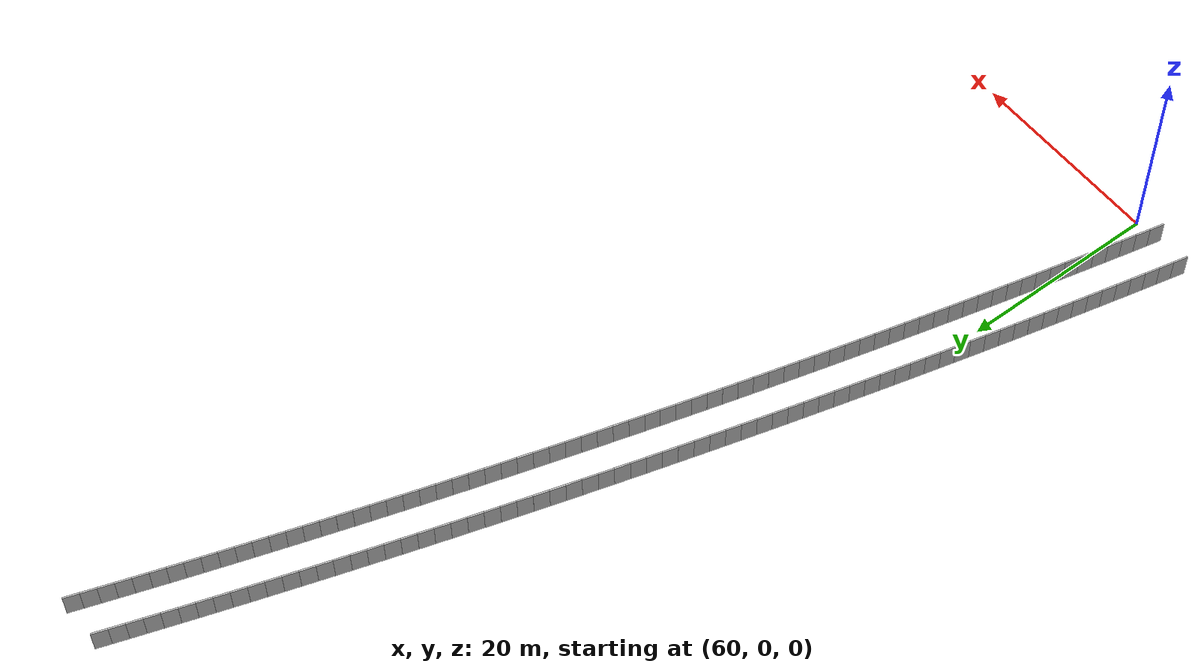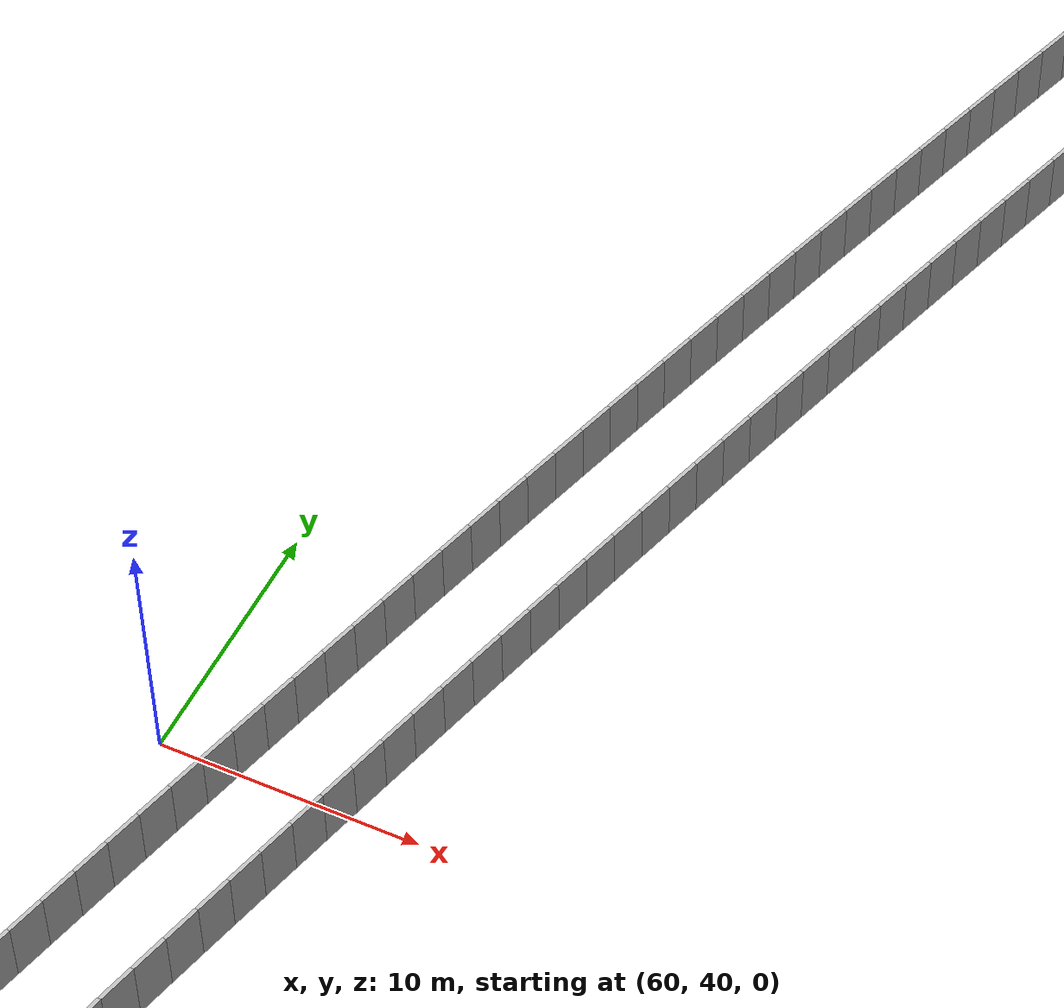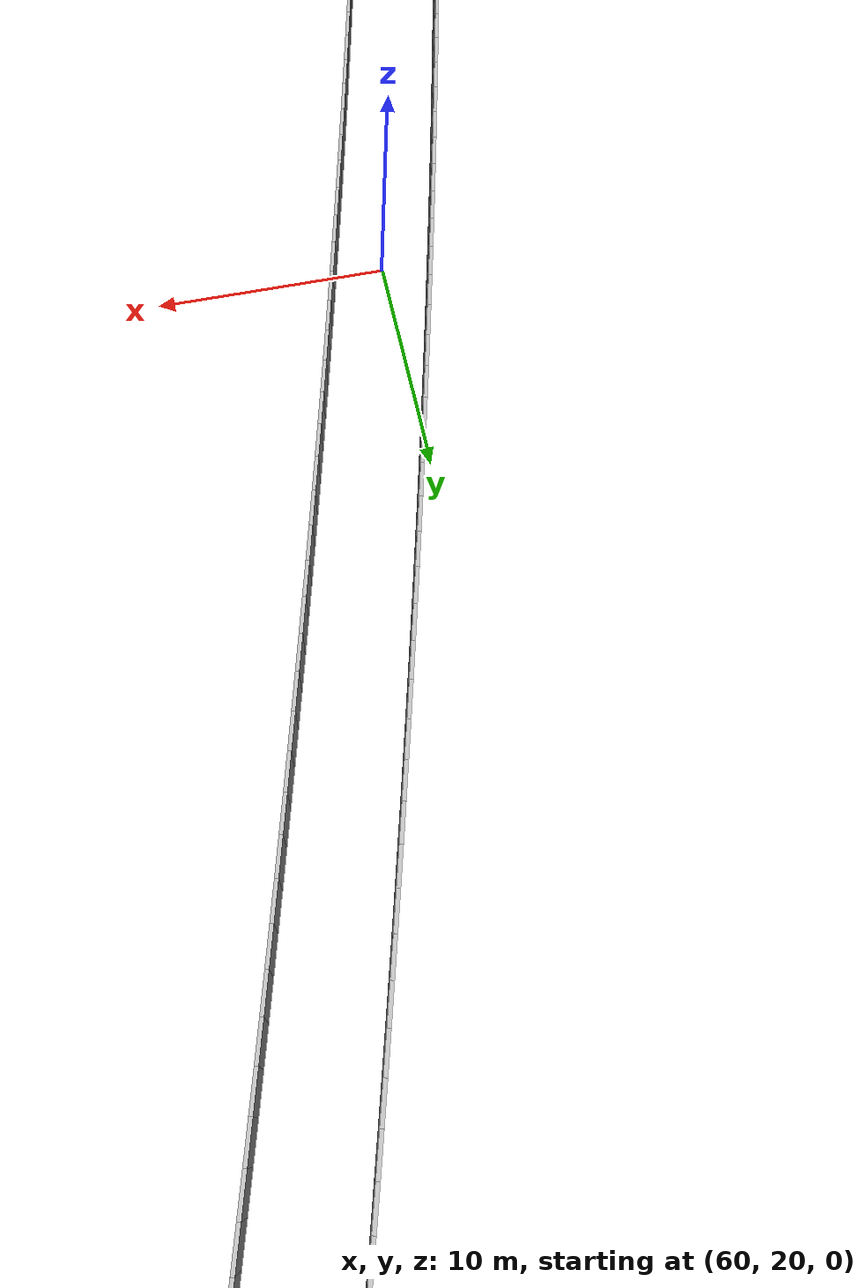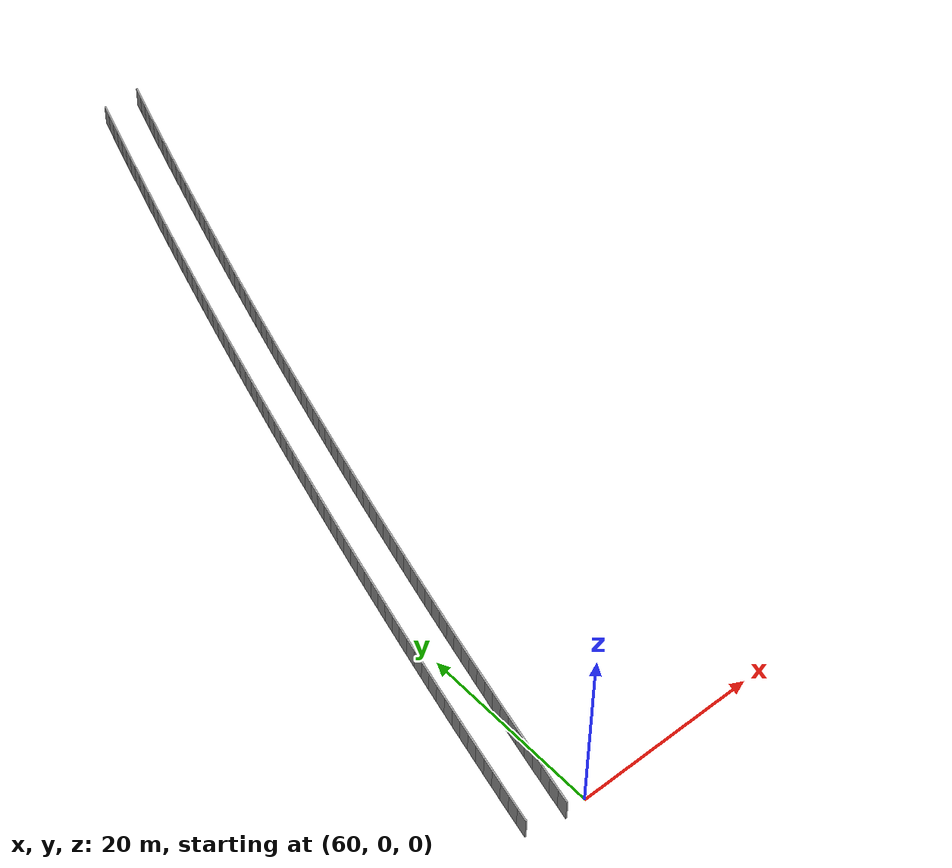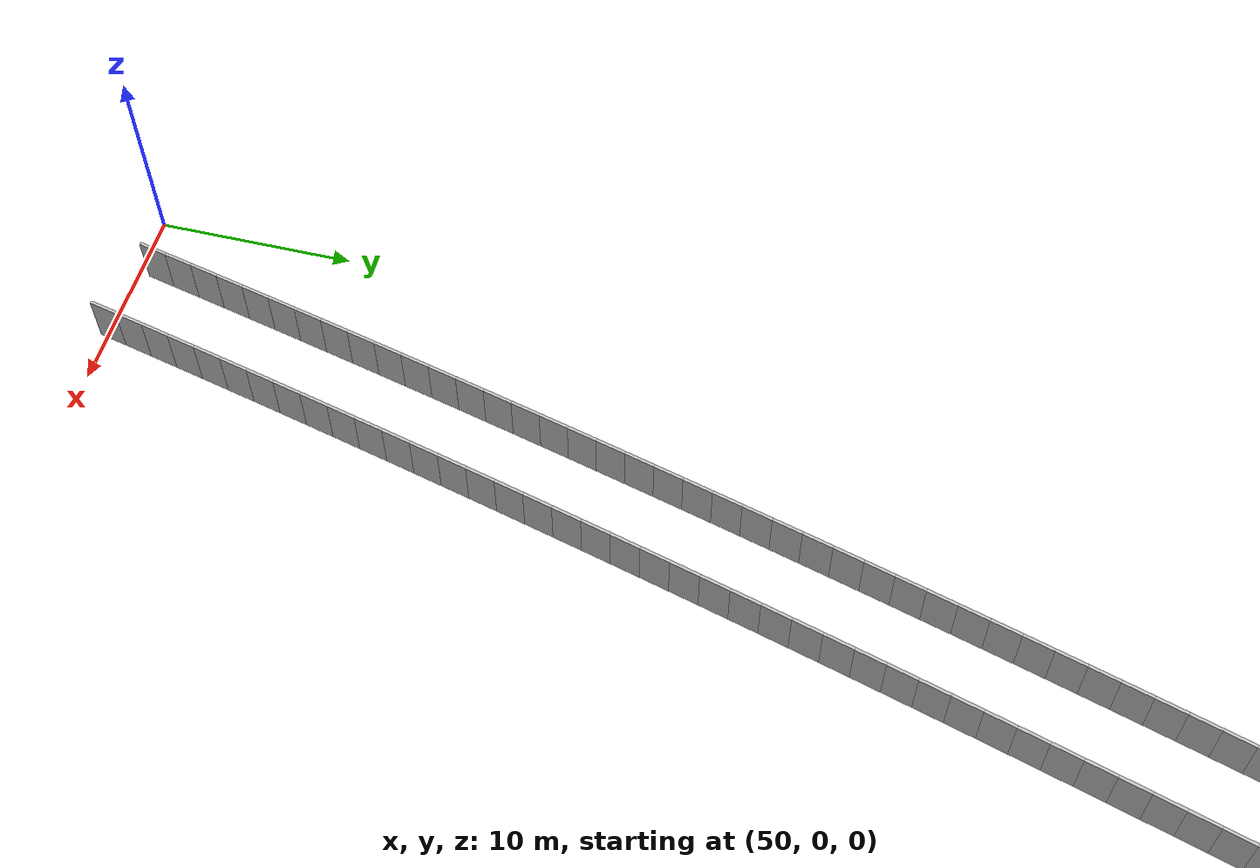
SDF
<sdf version="1.6">
 <model name="sps_0115">
  <static>1</static>
  <allow_auto_disable>0</allow_auto_disable>
  <link name="Wall5039">
   <collision name="collision"><geometry><box><size>1.49666 0.15 2.5</size></box></geometry></collision>
   <visual name="visual">
    <geometry><box><size>1.49666 0.15 2.5</size></box></geometry>
    <transparency>0.0</transparency>
   </visual>
   <pose>85.6731 99.6658 1.25 0 0 -1.90183</pose>
  </link>
  <link name="Wall5040">
   <collision name="collision"><geometry><box><size>1.49643 0.15 2.5</size></box></geometry></collision>
   <visual name="visual">
    <geometry><box><size>1.49643 0.15 2.5</size></box></geometry>
    <transparency>0.0</transparency>
   </visual>
   <pose>85.1879 98.2501 1.25 0 0 -1.90012</pose>
  </link>
  <link name="Wall5041">
   <collision name="collision"><geometry><box><size>1.49667 0.15 2.5</size></box></geometry></collision>
   <visual name="visual">
    <geometry><box><size>1.49667 0.15 2.5</size></box></geometry>
    <transparency>0.0</transparency>
   </visual>
   <pose>84.705 96.8336 1.25 0 0 -1.89856</pose>
  </link>
  <link name="Wall5042">
   <collision name="collision"><geometry><box><size>1.49654 0.15 2.5</size></box></geometry></collision>
   <visual name="visual">
    <geometry><box><size>1.49654 0.15 2.5</size></box></geometry>
    <transparency>0.0</transparency>
   </visual>
   <pose>84.2243 95.4163 1.25 0 0 -1.89704</pose>
  </link>
  <link name="Wall5043">
   <collision name="collision"><geometry><box><size>1.49636 0.15 2.5</size></box></geometry></collision>
   <visual name="visual">
    <geometry><box><size>1.49636 0.15 2.5</size></box></geometry>
    <transparency>0.0</transparency>
   </visual>
   <pose>83.7457 93.9984 1.25 0 0 -1.89553</pose>
  </link>
  <link name="Wall5044">
   <collision name="collision"><geometry><box><size>1.49662 0.15 2.5</size></box></geometry></collision>
   <visual name="visual">
    <geometry><box><size>1.49662 0.15 2.5</size></box></geometry>
    <transparency>0.0</transparency>
   </visual>
   <pose>83.2696 92.5797 1.25 0 0 -1.89375</pose>
  </link>
  <link name="Wall5045">
   <collision name="collision"><geometry><box><size>1.49647 0.15 2.5</size></box></geometry></collision>
   <visual name="visual">
    <geometry><box><size>1.49647 0.15 2.5</size></box></geometry>
    <transparency>0.0</transparency>
   </visual>
   <pose>82.7956 91.1602 1.25 0 0 -1.89228</pose>
  </link>
  <link name="Wall5046">
   <collision name="collision"><geometry><box><size>1.49651 0.15 2.5</size></box></geometry></collision>
   <visual name="visual">
    <geometry><box><size>1.49651 0.15 2.5</size></box></geometry>
    <transparency>0.0</transparency>
   </visual>
   <pose>82.3239 89.74 1.25 0 0 -1.89068</pose>
  </link>
  <link name="Wall5047">
   <collision name="collision"><geometry><box><size>1.49651 0.15 2.5</size></box></geometry></collision>
   <visual name="visual">
    <geometry><box><size>1.49651 0.15 2.5</size></box></geometry>
    <transparency>0.0</transparency>
   </visual>
   <pose>81.8545 88.319 1.25 0 0 -1.889</pose>
  </link>
  <link name="Wall5048">
   <collision name="collision"><geometry><box><size>1.49646 0.15 2.5</size></box></geometry></collision>
   <visual name="visual">
    <geometry><box><size>1.49646 0.15 2.5</size></box></geometry>
    <transparency>0.0</transparency>
   </visual>
   <pose>81.3874 86.8973 1.25 0 0 -1.88759</pose>
  </link>
  <link name="Wall5049">
   <collision name="collision"><geometry><box><size>1.49665 0.15 2.5</size></box></geometry></collision>
   <visual name="visual">
    <geometry><box><size>1.49665 0.15 2.5</size></box></geometry>
    <transparency>0.0</transparency>
   </visual>
   <pose>80.9224 85.4748 1.25 0 0 -1.88588</pose>
  </link>
  <link name="Wall5050">
   <collision name="collision"><geometry><box><size>1.49661 0.15 2.5</size></box></geometry></collision>
   <visual name="visual">
    <geometry><box><size>1.49661 0.15 2.5</size></box></geometry>
    <transparency>0.0</transparency>
   </visual>
   <pose>80.4596 84.0515 1.25 0 0 -1.88434</pose>
  </link>
  <link name="Wall5051">
   <collision name="collision"><geometry><box><size>1.49663 0.15 2.5</size></box></geometry></collision>
   <visual name="visual">
    <geometry><box><size>1.49663 0.15 2.5</size></box></geometry>
    <transparency>0.0</transparency>
   </visual>
   <pose>79.9991 82.6275 1.25 0 0 -1.8828</pose>
  </link>
  <link name="Wall5052">
   <collision name="collision"><geometry><box><size>1.4967 0.15 2.5</size></box></geometry></collision>
   <visual name="visual">
    <geometry><box><size>1.4967 0.15 2.5</size></box></geometry>
    <transparency>0.0</transparency>
   </visual>
   <pose>79.5409 81.2027 1.25 0 0 -1.88107</pose>
  </link>
  <link name="Wall5053">
   <collision name="collision"><geometry><box><size>1.4964 0.15 2.5</size></box></geometry></collision>
   <visual name="visual">
    <geometry><box><size>1.4964 0.15 2.5</size></box></geometry>
    <transparency>0.0</transparency>
   </visual>
   <pose>79.085 79.7773 1.25 0 0 -1.87964</pose>
  </link>
  <link name="Wall5054">
   <collision name="collision"><geometry><box><size>1.49659 0.15 2.5</size></box></geometry></collision>
   <visual name="visual">
    <geometry><box><size>1.49659 0.15 2.5</size></box></geometry>
    <transparency>0.0</transparency>
   </visual>
   <pose>78.6314 78.3512 1.25 0 0 -1.87788</pose>
  </link>
  <link name="Wall5055">
   <collision name="collision"><geometry><box><size>1.49656 0.15 2.5</size></box></geometry></collision>
   <visual name="visual">
    <geometry><box><size>1.49656 0.15 2.5</size></box></geometry>
    <transparency>0.0</transparency>
   </visual>
   <pose>78.18 76.9243 1.25 0 0 -1.87648</pose>
  </link>
  <link name="Wall5056">
   <collision name="collision"><geometry><box><size>1.49643 0.15 2.5</size></box></geometry></collision>
   <visual name="visual">
    <geometry><box><size>1.49643 0.15 2.5</size></box></geometry>
    <transparency>0.0</transparency>
   </visual>
   <pose>77.7309 75.4968 1.25 0 0 -1.87484</pose>
  </link>
  <link name="Wall5057">
   <collision name="collision"><geometry><box><size>1.49653 0.15 2.5</size></box></geometry></collision>
   <visual name="visual">
    <geometry><box><size>1.49653 0.15 2.5</size></box></geometry>
    <transparency>0.0</transparency>
   </visual>
   <pose>77.284 74.0686 1.25 0 0 -1.87328</pose>
  </link>
  <link name="Wall5058">
   <collision name="collision"><geometry><box><size>1.49646 0.15 2.5</size></box></geometry></collision>
   <visual name="visual">
    <geometry><box><size>1.49646 0.15 2.5</size></box></geometry>
    <transparency>0.0</transparency>
   </visual>
   <pose>76.8393 72.6397 1.25 0 0 -1.87163</pose>
  </link>
  <link name="Wall5059">
   <collision name="collision"><geometry><box><size>1.4965 0.15 2.5</size></box></geometry></collision>
   <visual name="visual">
    <geometry><box><size>1.4965 0.15 2.5</size></box></geometry>
    <transparency>0.0</transparency>
   </visual>
   <pose>76.3971 71.2101 1.25 0 0 -1.87004</pose>
  </link>
  <link name="Wall5060">
   <collision name="collision"><geometry><box><size>1.4964 0.15 2.5</size></box></geometry></collision>
   <visual name="visual">
    <geometry><box><size>1.4964 0.15 2.5</size></box></geometry>
    <transparency>0.0</transparency>
   </visual>
   <pose>75.9571 69.7798 1.25 0 0 -1.86844</pose>
  </link>
  <link name="Wall5061">
   <collision name="collision"><geometry><box><size>1.49655 0.15 2.5</size></box></geometry></collision>
   <visual name="visual">
    <geometry><box><size>1.49655 0.15 2.5</size></box></geometry>
    <transparency>0.0</transparency>
   </visual>
   <pose>75.5192 68.3488 1.25 0 0 -1.86696</pose>
  </link>
  <link name="Wall5062">
   <collision name="collision"><geometry><box><size>1.49662 0.15 2.5</size></box></geometry></collision>
   <visual name="visual">
    <geometry><box><size>1.49662 0.15 2.5</size></box></geometry>
    <transparency>0.0</transparency>
   </visual>
   <pose>75.0837 66.917 1.25 0 0 -1.86528</pose>
  </link>
  <link name="Wall5063">
   <collision name="collision"><geometry><box><size>1.49658 0.15 2.5</size></box></geometry></collision>
   <visual name="visual">
    <geometry><box><size>1.49658 0.15 2.5</size></box></geometry>
    <transparency>0.0</transparency>
   </visual>
   <pose>74.6504 65.4845 1.25 0 0 -1.8638</pose>
  </link>
  <link name="Wall5064">
   <collision name="collision"><geometry><box><size>1.49645 0.15 2.5</size></box></geometry></collision>
   <visual name="visual">
    <geometry><box><size>1.49645 0.15 2.5</size></box></geometry>
    <transparency>0.0</transparency>
   </visual>
   <pose>74.2194 64.0514 1.25 0 0 -1.86208</pose>
  </link>
  <link name="Wall5065">
   <collision name="collision"><geometry><box><size>1.49659 0.15 2.5</size></box></geometry></collision>
   <visual name="visual">
    <geometry><box><size>1.49659 0.15 2.5</size></box></geometry>
    <transparency>0.0</transparency>
   </visual>
   <pose>73.7907 62.6176 1.25 0 0 -1.86056</pose>
  </link>
  <link name="Wall5066">
   <collision name="collision"><geometry><box><size>1.49649 0.15 2.5</size></box></geometry></collision>
   <visual name="visual">
    <geometry><box><size>1.49649 0.15 2.5</size></box></geometry>
    <transparency>0.0</transparency>
   </visual>
   <pose>73.3642 61.1831 1.25 0 0 -1.85905</pose>
  </link>
  <link name="Wall5067">
   <collision name="collision"><geometry><box><size>1.49652 0.15 2.5</size></box></geometry></collision>
   <visual name="visual">
    <geometry><box><size>1.49652 0.15 2.5</size></box></geometry>
    <transparency>0.0</transparency>
   </visual>
   <pose>72.9398 59.748 1.25 0 0 -1.85751</pose>
  </link>
  <link name="Wall5068">
   <collision name="collision"><geometry><box><size>1.49654 0.15 2.5</size></box></geometry></collision>
   <visual name="visual">
    <geometry><box><size>1.49654 0.15 2.5</size></box></geometry>
    <transparency>0.0</transparency>
   </visual>
   <pose>72.5179 58.3122 1.25 0 0 -1.85568</pose>
  </link>
  <link name="Wall5069">
   <collision name="collision"><geometry><box><size>1.4965 0.15 2.5</size></box></geometry></collision>
   <visual name="visual">
    <geometry><box><size>1.4965 0.15 2.5</size></box></geometry>
    <transparency>0.0</transparency>
   </visual>
   <pose>72.0983 56.8757 1.25 0 0 -1.85428</pose>
  </link>
  <link name="Wall5070">
   <collision name="collision"><geometry><box><size>1.49648 0.15 2.5</size></box></geometry></collision>
   <visual name="visual">
    <geometry><box><size>1.49648 0.15 2.5</size></box></geometry>
    <transparency>0.0</transparency>
   </visual>
   <pose>71.681 55.4386 1.25 0 0 -1.85263</pose>
  </link>
  <link name="Wall5071">
   <collision name="collision"><geometry><box><size>1.4964 0.15 2.5</size></box></geometry></collision>
   <visual name="visual">
    <geometry><box><size>1.4964 0.15 2.5</size></box></geometry>
    <transparency>0.0</transparency>
   </visual>
   <pose>71.2659 54.0009 1.25 0 0 -1.85112</pose>
  </link>
  <link name="Wall5072">
   <collision name="collision"><geometry><box><size>1.4965 0.15 2.5</size></box></geometry></collision>
   <visual name="visual">
    <geometry><box><size>1.4965 0.15 2.5</size></box></geometry>
    <transparency>0.0</transparency>
   </visual>
   <pose>70.853 52.5625 1.25 0 0 -1.84944</pose>
  </link>
  <link name="Wall5073">
   <collision name="collision"><geometry><box><size>1.49665 0.15 2.5</size></box></geometry></collision>
   <visual name="visual">
    <geometry><box><size>1.49665 0.15 2.5</size></box></geometry>
    <transparency>0.0</transparency>
   </visual>
   <pose>70.4426 51.1233 1.25 0 0 -1.84785</pose>
  </link>
  <link name="Wall5074">
   <collision name="collision"><geometry><box><size>1.49648 0.15 2.5</size></box></geometry></collision>
   <visual name="visual">
    <geometry><box><size>1.49648 0.15 2.5</size></box></geometry>
    <transparency>0.0</transparency>
   </visual>
   <pose>70.0343 49.6835 1.25 0 0 -1.8464</pose>
  </link>
  <link name="Wall5075">
   <collision name="collision"><geometry><box><size>1.49658 0.15 2.5</size></box></geometry></collision>
   <visual name="visual">
    <geometry><box><size>1.49658 0.15 2.5</size></box></geometry>
    <transparency>0.0</transparency>
   </visual>
   <pose>69.6283 48.2431 1.25 0 0 -1.84468</pose>
  </link>
  <link name="Wall5076">
   <collision name="collision"><geometry><box><size>1.49657 0.15 2.5</size></box></geometry></collision>
   <visual name="visual">
    <geometry><box><size>1.49657 0.15 2.5</size></box></geometry>
    <transparency>0.0</transparency>
   </visual>
   <pose>69.2246 46.802 1.25 0 0 -1.84316</pose>
  </link>
  <link name="Wall5077">
   <collision name="collision"><geometry><box><size>1.49652 0.15 2.5</size></box></geometry></collision>
   <visual name="visual">
    <geometry><box><size>1.49652 0.15 2.5</size></box></geometry>
    <transparency>0.0</transparency>
   </visual>
   <pose>68.8232 45.3603 1.25 0 0 -1.84152</pose>
  </link>
  <link name="Wall5078">
   <collision name="collision"><geometry><box><size>1.49652 0.15 2.5</size></box></geometry></collision>
   <visual name="visual">
    <geometry><box><size>1.49652 0.15 2.5</size></box></geometry>
    <transparency>0.0</transparency>
   </visual>
   <pose>68.4241 43.918 1.25 0 0 -1.83999</pose>
  </link>
  <link name="Wall5079">
   <collision name="collision"><geometry><box><size>1.49642 0.15 2.5</size></box></geometry></collision>
   <visual name="visual">
    <geometry><box><size>1.49642 0.15 2.5</size></box></geometry>
    <transparency>0.0</transparency>
   </visual>
   <pose>68.0272 42.4751 1.25 0 0 -1.83836</pose>
  </link>
  <link name="Wall5080">
   <collision name="collision"><geometry><box><size>1.49665 0.15 2.5</size></box></geometry></collision>
   <visual name="visual">
    <geometry><box><size>1.49665 0.15 2.5</size></box></geometry>
    <transparency>0.0</transparency>
   </visual>
   <pose>67.6327 41.0315 1.25 0 0 -1.83676</pose>
  </link>
  <link name="Wall5081">
   <collision name="collision"><geometry><box><size>1.49643 0.15 2.5</size></box></geometry></collision>
   <visual name="visual">
    <geometry><box><size>1.49643 0.15 2.5</size></box></geometry>
    <transparency>0.0</transparency>
   </visual>
   <pose>67.2405 39.5873 1.25 0 0 -1.83527</pose>
  </link>
  <link name="Wall5082">
   <collision name="collision"><geometry><box><size>1.49635 0.15 2.5</size></box></geometry></collision>
   <visual name="visual">
    <geometry><box><size>1.49635 0.15 2.5</size></box></geometry>
    <transparency>0.0</transparency>
   </visual>
   <pose>66.8505 38.1426 1.25 0 0 -1.83368</pose>
  </link>
  <link name="Wall5083">
   <collision name="collision"><geometry><box><size>1.4966 0.15 2.5</size></box></geometry></collision>
   <visual name="visual">
    <geometry><box><size>1.4966 0.15 2.5</size></box></geometry>
    <transparency>0.0</transparency>
   </visual>
   <pose>66.4627 36.6972 1.25 0 0 -1.83208</pose>
  </link>
  <link name="Wall5084">
   <collision name="collision"><geometry><box><size>1.49656 0.15 2.5</size></box></geometry></collision>
   <visual name="visual">
    <geometry><box><size>1.49656 0.15 2.5</size></box></geometry>
    <transparency>0.0</transparency>
   </visual>
   <pose>66.0774 35.2511 1.25 0 0 -1.8304</pose>
  </link>
  <link name="Wall5085">
   <collision name="collision"><geometry><box><size>1.49642 0.15 2.5</size></box></geometry></collision>
   <visual name="visual">
    <geometry><box><size>1.49642 0.15 2.5</size></box></geometry>
    <transparency>0.0</transparency>
   </visual>
   <pose>65.6943 33.8045 1.25 0 0 -1.82894</pose>
  </link>
  <link name="Wall5086">
   <collision name="collision"><geometry><box><size>1.49669 0.15 2.5</size></box></geometry></collision>
   <visual name="visual">
    <geometry><box><size>1.49669 0.15 2.5</size></box></geometry>
    <transparency>0.0</transparency>
   </visual>
   <pose>65.3135 32.3572 1.25 0 0 -1.82721</pose>
  </link>
  <link name="Wall5087">
   <collision name="collision"><geometry><box><size>1.49638 0.15 2.5</size></box></geometry></collision>
   <visual name="visual">
    <geometry><box><size>1.49638 0.15 2.5</size></box></geometry>
    <transparency>0.0</transparency>
   </visual>
   <pose>64.935 30.9093 1.25 0 0 -1.82579</pose>
  </link>
  <link name="Wall5088">
   <collision name="collision"><geometry><box><size>1.4966 0.15 2.5</size></box></geometry></collision>
   <visual name="visual">
    <geometry><box><size>1.4966 0.15 2.5</size></box></geometry>
    <transparency>0.0</transparency>
   </visual>
   <pose>64.5587 29.4609 1.25 0 0 -1.82406</pose>
  </link>
  <link name="Wall5089">
   <collision name="collision"><geometry><box><size>1.49658 0.15 2.5</size></box></geometry></collision>
   <visual name="visual">
    <geometry><box><size>1.49658 0.15 2.5</size></box></geometry>
    <transparency>0.0</transparency>
   </visual>
   <pose>64.1848 28.0118 1.25 0 0 -1.82255</pose>
  </link>
  <link name="Wall5090">
   <collision name="collision"><geometry><box><size>1.49639 0.15 2.5</size></box></geometry></collision>
   <visual name="visual">
    <geometry><box><size>1.49639 0.15 2.5</size></box></geometry>
    <transparency>0.0</transparency>
   </visual>
   <pose>63.8131 26.5622 1.25 0 0 -1.82107</pose>
  </link>
  <link name="Wall5091">
   <collision name="collision"><geometry><box><size>1.49657 0.15 2.5</size></box></geometry></collision>
   <visual name="visual">
    <geometry><box><size>1.49657 0.15 2.5</size></box></geometry>
    <transparency>0.0</transparency>
   </visual>
   <pose>63.4438 25.112 1.25 0 0 -1.81923</pose>
  </link>
  <link name="Wall5092">
   <collision name="collision"><geometry><box><size>1.49643 0.15 2.5</size></box></geometry></collision>
   <visual name="visual">
    <geometry><box><size>1.49643 0.15 2.5</size></box></geometry>
    <transparency>0.0</transparency>
   </visual>
   <pose>63.0769 23.6612 1.25 0 0 -1.81786</pose>
  </link>
  <link name="Wall5093">
   <collision name="collision"><geometry><box><size>1.49663 0.15 2.5</size></box></geometry></collision>
   <visual name="visual">
    <geometry><box><size>1.49663 0.15 2.5</size></box></geometry>
    <transparency>0.0</transparency>
   </visual>
   <pose>62.7121 22.2098 1.25 0 0 -1.81623</pose>
  </link>
  <link name="Wall5094">
   <collision name="collision"><geometry><box><size>1.49663 0.15 2.5</size></box></geometry></collision>
   <visual name="visual">
    <geometry><box><size>1.49663 0.15 2.5</size></box></geometry>
    <transparency>0.0</transparency>
   </visual>
   <pose>62.3496 20.7577 1.25 0 0 -1.81455</pose>
  </link>
  <link name="Wall5095">
   <collision name="collision"><geometry><box><size>1.49651 0.15 2.5</size></box></geometry></collision>
   <visual name="visual">
    <geometry><box><size>1.49651 0.15 2.5</size></box></geometry>
    <transparency>0.0</transparency>
   </visual>
   <pose>61.9896 19.3051 1.25 0 0 -1.81302</pose>
  </link>
  <link name="Wall5096">
   <collision name="collision"><geometry><box><size>1.49648 0.15 2.5</size></box></geometry></collision>
   <visual name="visual">
    <geometry><box><size>1.49648 0.15 2.5</size></box></geometry>
    <transparency>0.0</transparency>
   </visual>
   <pose>61.6318 17.852 1.25 0 0 -1.81142</pose>
  </link>
  <link name="Wall5097">
   <collision name="collision"><geometry><box><size>1.4966 0.15 2.5</size></box></geometry></collision>
   <visual name="visual">
    <geometry><box><size>1.4966 0.15 2.5</size></box></geometry>
    <transparency>0.0</transparency>
   </visual>
   <pose>61.2763 16.3983 1.25 0 0 -1.80985</pose>
  </link>
  <link name="Wall5098">
   <collision name="collision"><geometry><box><size>1.49641 0.15 2.5</size></box></geometry></collision>
   <visual name="visual">
    <geometry><box><size>1.49641 0.15 2.5</size></box></geometry>
    <transparency>0.0</transparency>
   </visual>
   <pose>60.9231 14.9441 1.25 0 0 -1.80829</pose>
  </link>
  <link name="Wall5099">
   <collision name="collision"><geometry><box><size>1.49665 0.15 2.5</size></box></geometry></collision>
   <visual name="visual">
    <geometry><box><size>1.49665 0.15 2.5</size></box></geometry>
    <transparency>0.0</transparency>
   </visual>
   <pose>60.5721 13.4893 1.25 0 0 -1.8067</pose>
  </link>
  <link name="Wall5100">
   <collision name="collision"><geometry><box><size>1.49649 0.15 2.5</size></box></geometry></collision>
   <visual name="visual">
    <geometry><box><size>1.49649 0.15 2.5</size></box></geometry>
    <transparency>0.0</transparency>
   </visual>
   <pose>60.2234 12.0339 1.25 0 0 -1.80521</pose>
  </link>
  <link name="Wall5101">
   <collision name="collision"><geometry><box><size>1.4966 0.15 2.5</size></box></geometry></collision>
   <visual name="visual">
    <geometry><box><size>1.4966 0.15 2.5</size></box></geometry>
    <transparency>0.0</transparency>
   </visual>
   <pose>59.877 10.578 1.25 0 0 -1.80356</pose>
  </link>
  <link name="Wall5102">
   <collision name="collision"><geometry><box><size>1.49639 0.15 2.5</size></box></geometry></collision>
   <visual name="visual">
    <geometry><box><size>1.49639 0.15 2.5</size></box></geometry>
    <transparency>0.0</transparency>
   </visual>
   <pose>59.533 9.12157 1.25 0 0 -1.80192</pose>
  </link>
  <link name="Wall5103">
   <collision name="collision"><geometry><box><size>1.49643 0.15 2.5</size></box></geometry></collision>
   <visual name="visual">
    <geometry><box><size>1.49643 0.15 2.5</size></box></geometry>
    <transparency>0.0</transparency>
   </visual>
   <pose>59.1914 7.66469 1.25 0 0 -1.8004</pose>
  </link>
  <link name="Wall5104">
   <collision name="collision"><geometry><box><size>1.49654 0.15 2.5</size></box></geometry></collision>
   <visual name="visual">
    <geometry><box><size>1.49654 0.15 2.5</size></box></geometry>
    <transparency>0.0</transparency>
   </visual>
   <pose>58.852 6.2072 1.25 0 0 -1.79875</pose>
  </link>
  <link name="Wall5105">
   <collision name="collision"><geometry><box><size>1.49654 0.15 2.5</size></box></geometry></collision>
   <visual name="visual">
    <geometry><box><size>1.49654 0.15 2.5</size></box></geometry>
    <transparency>0.0</transparency>
   </visual>
   <pose>58.515 4.7491 1.25 0 0 -1.79712</pose>
  </link>
  <link name="Wall5106">
   <collision name="collision"><geometry><box><size>1.49646 0.15 2.5</size></box></geometry></collision>
   <visual name="visual">
    <geometry><box><size>1.49646 0.15 2.5</size></box></geometry>
    <transparency>0.0</transparency>
   </visual>
   <pose>58.1803 3.29051 1.25 0 0 -1.79562</pose>
  </link>
  <link name="Wall5107">
   <collision name="collision"><geometry><box><size>1.49657 0.15 2.5</size></box></geometry></collision>
   <visual name="visual">
    <geometry><box><size>1.49657 0.15 2.5</size></box></geometry>
    <transparency>0.0</transparency>
   </visual>
   <pose>57.8477 1.8314 1.25 0 0 -1.7941</pose>
  </link>
  <link name="Wall5108">
   <collision name="collision"><geometry><box><size>1.49659 0.15 2.5</size></box></geometry></collision>
   <visual name="visual">
    <geometry><box><size>1.49659 0.15 2.5</size></box></geometry>
    <transparency>0.0</transparency>
   </visual>
   <pose>57.5176 0.371688 1.25 0 0 -1.7923</pose>
  </link>
  <link name="Wall6836">
   <collision name="collision"><geometry><box><size>1.50305 0.15 2.5</size></box></geometry></collision>
   <visual name="visual">
    <geometry><box><size>1.50305 0.15 2.5</size></box></geometry>
    <transparency>0.0</transparency>
   </visual>
   <pose>81.2711 99.5892 1.25 0 0 -1.9002</pose>
  </link>
  <link name="Wall6837">
   <collision name="collision"><geometry><box><size>1.50321 0.15 2.5</size></box></geometry></collision>
   <visual name="visual">
    <geometry><box><size>1.50321 0.15 2.5</size></box></geometry>
    <transparency>0.0</transparency>
   </visual>
   <pose>80.786 98.1665 1.25 0 0 -1.89862</pose>
  </link>
  <link name="Wall6838">
   <collision name="collision"><geometry><box><size>1.50341 0.15 2.5</size></box></geometry></collision>
   <visual name="visual">
    <geometry><box><size>1.50341 0.15 2.5</size></box></geometry>
    <transparency>0.0</transparency>
   </visual>
   <pose>80.3032 96.7428 1.25 0 0 -1.89686</pose>
  </link>
  <link name="Wall6839">
   <collision name="collision"><geometry><box><size>1.50296 0.15 2.5</size></box></geometry></collision>
   <visual name="visual">
    <geometry><box><size>1.50296 0.15 2.5</size></box></geometry>
    <transparency>0.0</transparency>
   </visual>
   <pose>79.8227 95.3185 1.25 0 0 -1.89546</pose>
  </link>
  <link name="Wall6840">
   <collision name="collision"><geometry><box><size>1.50287 0.15 2.5</size></box></geometry></collision>
   <visual name="visual">
    <geometry><box><size>1.50287 0.15 2.5</size></box></geometry>
    <transparency>0.0</transparency>
   </visual>
   <pose>79.3445 93.8937 1.25 0 0 -1.89377</pose>
  </link>
  <link name="Wall6841">
   <collision name="collision"><geometry><box><size>1.50322 0.15 2.5</size></box></geometry></collision>
   <visual name="visual">
    <geometry><box><size>1.50322 0.15 2.5</size></box></geometry>
    <transparency>0.0</transparency>
   </visual>
   <pose>78.8686 92.468 1.25 0 0 -1.89228</pose>
  </link>
  <link name="Wall6842">
   <collision name="collision"><geometry><box><size>1.50313 0.15 2.5</size></box></geometry></collision>
   <visual name="visual">
    <geometry><box><size>1.50313 0.15 2.5</size></box></geometry>
    <transparency>0.0</transparency>
   </visual>
   <pose>78.3946 91.0415 1.25 0 0 -1.8908</pose>
  </link>
  <link name="Wall6843">
   <collision name="collision"><geometry><box><size>1.50311 0.15 2.5</size></box></geometry></collision>
   <visual name="visual">
    <geometry><box><size>1.50311 0.15 2.5</size></box></geometry>
    <transparency>0.0</transparency>
   </visual>
   <pose>77.923 89.6143 1.25 0 0 -1.88909</pose>
  </link>
  <link name="Wall6844">
   <collision name="collision"><geometry><box><size>1.50305 0.15 2.5</size></box></geometry></collision>
   <visual name="visual">
    <geometry><box><size>1.50305 0.15 2.5</size></box></geometry>
    <transparency>0.0</transparency>
   </visual>
   <pose>77.4538 88.1863 1.25 0 0 -1.8874</pose>
  </link>
  <link name="Wall6845">
   <collision name="collision"><geometry><box><size>1.50302 0.15 2.5</size></box></geometry></collision>
   <visual name="visual">
    <geometry><box><size>1.50302 0.15 2.5</size></box></geometry>
    <transparency>0.0</transparency>
   </visual>
   <pose>76.987 86.7576 1.25 0 0 -1.88591</pose>
  </link>
  <link name="Wall6846">
   <collision name="collision"><geometry><box><size>1.50292 0.15 2.5</size></box></geometry></collision>
   <visual name="visual">
    <geometry><box><size>1.50292 0.15 2.5</size></box></geometry>
    <transparency>0.0</transparency>
   </visual>
   <pose>76.5222 85.3283 1.25 0 0 -1.88439</pose>
  </link>
  <link name="Wall6847">
   <collision name="collision"><geometry><box><size>1.5031 0.15 2.5</size></box></geometry></collision>
   <visual name="visual">
    <geometry><box><size>1.5031 0.15 2.5</size></box></geometry>
    <transparency>0.0</transparency>
   </visual>
   <pose>76.0598 83.8982 1.25 0 0 -1.88265</pose>
  </link>
  <link name="Wall6848">
   <collision name="collision"><geometry><box><size>1.50324 0.15 2.5</size></box></geometry></collision>
   <visual name="visual">
    <geometry><box><size>1.50324 0.15 2.5</size></box></geometry>
    <transparency>0.0</transparency>
   </visual>
   <pose>75.5997 82.4672 1.25 0 0 -1.88121</pose>
  </link>
  <link name="Wall6849">
   <collision name="collision"><geometry><box><size>1.50311 0.15 2.5</size></box></geometry></collision>
   <visual name="visual">
    <geometry><box><size>1.50311 0.15 2.5</size></box></geometry>
    <transparency>0.0</transparency>
   </visual>
   <pose>75.1417 81.0355 1.25 0 0 -1.87962</pose>
  </link>
  <link name="Wall6850">
   <collision name="collision"><geometry><box><size>1.50288 0.15 2.5</size></box></geometry></collision>
   <visual name="visual">
    <geometry><box><size>1.50288 0.15 2.5</size></box></geometry>
    <transparency>0.0</transparency>
   </visual>
   <pose>74.6861 79.6032 1.25 0 0 -1.87792</pose>
  </link>
  <link name="Wall6851">
   <collision name="collision"><geometry><box><size>1.50312 0.15 2.5</size></box></geometry></collision>
   <visual name="visual">
    <geometry><box><size>1.50312 0.15 2.5</size></box></geometry>
    <transparency>0.0</transparency>
   </visual>
   <pose>74.2327 78.1702 1.25 0 0 -1.87655</pose>
  </link>
  <link name="Wall6852">
   <collision name="collision"><geometry><box><size>1.50307 0.15 2.5</size></box></geometry></collision>
   <visual name="visual">
    <geometry><box><size>1.50307 0.15 2.5</size></box></geometry>
    <transparency>0.0</transparency>
   </visual>
   <pose>73.7815 76.7364 1.25 0 0 -1.87468</pose>
  </link>
  <link name="Wall6853">
   <collision name="collision"><geometry><box><size>1.50307 0.15 2.5</size></box></geometry></collision>
   <visual name="visual">
    <geometry><box><size>1.50307 0.15 2.5</size></box></geometry>
    <transparency>0.0</transparency>
   </visual>
   <pose>73.3328 75.3019 1.25 0 0 -1.87332</pose>
  </link>
  <link name="Wall6854">
   <collision name="collision"><geometry><box><size>1.50311 0.15 2.5</size></box></geometry></collision>
   <visual name="visual">
    <geometry><box><size>1.50311 0.15 2.5</size></box></geometry>
    <transparency>0.0</transparency>
   </visual>
   <pose>72.8862 73.8667 1.25 0 0 -1.87161</pose>
  </link>
  <link name="Wall6855">
   <collision name="collision"><geometry><box><size>1.503 0.15 2.5</size></box></geometry></collision>
   <visual name="visual">
    <geometry><box><size>1.503 0.15 2.5</size></box></geometry>
    <transparency>0.0</transparency>
   </visual>
   <pose>72.4419 72.4308 1.25 0 0 -1.87015</pose>
  </link>
  <link name="Wall6856">
   <collision name="collision"><geometry><box><size>1.5031 0.15 2.5</size></box></geometry></collision>
   <visual name="visual">
    <geometry><box><size>1.5031 0.15 2.5</size></box></geometry>
    <transparency>0.0</transparency>
   </visual>
   <pose>71.9998 70.9942 1.25 0 0 -1.86843</pose>
  </link>
  <link name="Wall6857">
   <collision name="collision"><geometry><box><size>1.50321 0.15 2.5</size></box></geometry></collision>
   <visual name="visual">
    <geometry><box><size>1.50321 0.15 2.5</size></box></geometry>
    <transparency>0.0</transparency>
   </visual>
   <pose>71.5601 69.5568 1.25 0 0 -1.86688</pose>
  </link>
  <link name="Wall6858">
   <collision name="collision"><geometry><box><size>1.50316 0.15 2.5</size></box></geometry></collision>
   <visual name="visual">
    <geometry><box><size>1.50316 0.15 2.5</size></box></geometry>
    <transparency>0.0</transparency>
   </visual>
   <pose>71.1226 68.1187 1.25 0 0 -1.86536</pose>
  </link>
  <link name="Wall6859">
   <collision name="collision"><geometry><box><size>1.50304 0.15 2.5</size></box></geometry></collision>
   <visual name="visual">
    <geometry><box><size>1.50304 0.15 2.5</size></box></geometry>
    <transparency>0.0</transparency>
   </visual>
   <pose>70.6875 66.68 1.25 0 0 -1.86369</pose>
  </link>
  <link name="Wall6860">
   <collision name="collision"><geometry><box><size>1.50312 0.15 2.5</size></box></geometry></collision>
   <visual name="visual">
    <geometry><box><size>1.50312 0.15 2.5</size></box></geometry>
    <transparency>0.0</transparency>
   </visual>
   <pose>70.2546 65.2406 1.25 0 0 -1.86219</pose>
  </link>
  <link name="Wall6861">
   <collision name="collision"><geometry><box><size>1.50307 0.15 2.5</size></box></geometry></collision>
   <visual name="visual">
    <geometry><box><size>1.50307 0.15 2.5</size></box></geometry>
    <transparency>0.0</transparency>
   </visual>
   <pose>69.824 63.8005 1.25 0 0 -1.8605</pose>
  </link>
  <link name="Wall6862">
   <collision name="collision"><geometry><box><size>1.50298 0.15 2.5</size></box></geometry></collision>
   <visual name="visual">
    <geometry><box><size>1.50298 0.15 2.5</size></box></geometry>
    <transparency>0.0</transparency>
   </visual>
   <pose>69.3957 62.3598 1.25 0 0 -1.85904</pose>
  </link>
  <link name="Wall6863">
   <collision name="collision"><geometry><box><size>1.50316 0.15 2.5</size></box></geometry></collision>
   <visual name="visual">
    <geometry><box><size>1.50316 0.15 2.5</size></box></geometry>
    <transparency>0.0</transparency>
   </visual>
   <pose>68.9695 60.9184 1.25 0 0 -1.85743</pose>
  </link>
  <link name="Wall6864">
   <collision name="collision"><geometry><box><size>1.50307 0.15 2.5</size></box></geometry></collision>
   <visual name="visual">
    <geometry><box><size>1.50307 0.15 2.5</size></box></geometry>
    <transparency>0.0</transparency>
   </visual>
   <pose>68.5456 59.4763 1.25 0 0 -1.85593</pose>
  </link>
  <link name="Wall6865">
   <collision name="collision"><geometry><box><size>1.50299 0.15 2.5</size></box></geometry></collision>
   <visual name="visual">
    <geometry><box><size>1.50299 0.15 2.5</size></box></geometry>
    <transparency>0.0</transparency>
   </visual>
   <pose>68.124 58.0336 1.25 0 0 -1.85429</pose>
  </link>
  <link name="Wall6866">
   <collision name="collision"><geometry><box><size>1.50307 0.15 2.5</size></box></geometry></collision>
   <visual name="visual">
    <geometry><box><size>1.50307 0.15 2.5</size></box></geometry>
    <transparency>0.0</transparency>
   </visual>
   <pose>67.7049 56.5902 1.25 0 0 -1.85259</pose>
  </link>
  <link name="Wall6867">
   <collision name="collision"><geometry><box><size>1.50324 0.15 2.5</size></box></geometry></collision>
   <visual name="visual">
    <geometry><box><size>1.50324 0.15 2.5</size></box></geometry>
    <transparency>0.0</transparency>
   </visual>
   <pose>67.288 55.146 1.25 0 0 -1.85108</pose>
  </link>
  <link name="Wall6868">
   <collision name="collision"><geometry><box><size>1.50298 0.15 2.5</size></box></geometry></collision>
   <visual name="visual">
    <geometry><box><size>1.50298 0.15 2.5</size></box></geometry>
    <transparency>0.0</transparency>
   </visual>
   <pose>66.8733 53.7012 1.25 0 0 -1.84944</pose>
  </link>
  <link name="Wall6869">
   <collision name="collision"><geometry><box><size>1.50309 0.15 2.5</size></box></geometry></collision>
   <visual name="visual">
    <geometry><box><size>1.50309 0.15 2.5</size></box></geometry>
    <transparency>0.0</transparency>
   </visual>
   <pose>66.4611 52.2558 1.25 0 0 -1.84777</pose>
  </link>
  <link name="Wall6870">
   <collision name="collision"><geometry><box><size>1.50295 0.15 2.5</size></box></geometry></collision>
   <visual name="visual">
    <geometry><box><size>1.50295 0.15 2.5</size></box></geometry>
    <transparency>0.0</transparency>
   </visual>
   <pose>66.0511 50.8098 1.25 0 0 -1.8464</pose>
  </link>
  <link name="Wall6871">
   <collision name="collision"><geometry><box><size>1.50323 0.15 2.5</size></box></geometry></collision>
   <visual name="visual">
    <geometry><box><size>1.50323 0.15 2.5</size></box></geometry>
    <transparency>0.0</transparency>
   </visual>
   <pose>65.6434 49.3631 1.25 0 0 -1.84466</pose>
  </link>
  <link name="Wall6872">
   <collision name="collision"><geometry><box><size>1.503 0.15 2.5</size></box></geometry></collision>
   <visual name="visual">
    <geometry><box><size>1.503 0.15 2.5</size></box></geometry>
    <transparency>0.0</transparency>
   </visual>
   <pose>65.2379 47.9157 1.25 0 0 -1.84323</pose>
  </link>
  <link name="Wall6873">
   <collision name="collision"><geometry><box><size>1.50319 0.15 2.5</size></box></geometry></collision>
   <visual name="visual">
    <geometry><box><size>1.50319 0.15 2.5</size></box></geometry>
    <transparency>0.0</transparency>
   </visual>
   <pose>64.8346 46.4677 1.25 0 0 -1.84155</pose>
  </link>
  <link name="Wall6874">
   <collision name="collision"><geometry><box><size>1.50307 0.15 2.5</size></box></geometry></collision>
   <visual name="visual">
    <geometry><box><size>1.50307 0.15 2.5</size></box></geometry>
    <transparency>0.0</transparency>
   </visual>
   <pose>64.4338 45.019 1.25 0 0 -1.83989</pose>
  </link>
  <link name="Wall6875">
   <collision name="collision"><geometry><box><size>1.50289 0.15 2.5</size></box></geometry></collision>
   <visual name="visual">
    <geometry><box><size>1.50289 0.15 2.5</size></box></geometry>
    <transparency>0.0</transparency>
   </visual>
   <pose>64.0353 43.5698 1.25 0 0 -1.8384</pose>
  </link>
  <link name="Wall6876">
   <collision name="collision"><geometry><box><size>1.50308 0.15 2.5</size></box></geometry></collision>
   <visual name="visual">
    <geometry><box><size>1.50308 0.15 2.5</size></box></geometry>
    <transparency>0.0</transparency>
   </visual>
   <pose>63.639 42.12 1.25 0 0 -1.83685</pose>
  </link>
  <link name="Wall6877">
   <collision name="collision"><geometry><box><size>1.50321 0.15 2.5</size></box></geometry></collision>
   <visual name="visual">
    <geometry><box><size>1.50321 0.15 2.5</size></box></geometry>
    <transparency>0.0</transparency>
   </visual>
   <pose>63.245 40.6694 1.25 0 0 -1.83515</pose>
  </link>
  <link name="Wall6878">
   <collision name="collision"><geometry><box><size>1.50306 0.15 2.5</size></box></geometry></collision>
   <visual name="visual">
    <geometry><box><size>1.50306 0.15 2.5</size></box></geometry>
    <transparency>0.0</transparency>
   </visual>
   <pose>62.8534 39.2182 1.25 0 0 -1.8337</pose>
  </link>
  <link name="Wall6879">
   <collision name="collision"><geometry><box><size>1.5032 0.15 2.5</size></box></geometry></collision>
   <visual name="visual">
    <geometry><box><size>1.5032 0.15 2.5</size></box></geometry>
    <transparency>0.0</transparency>
   </visual>
   <pose>62.464 37.7664 1.25 0 0 -1.832</pose>
  </link>
  <link name="Wall6880">
   <collision name="collision"><geometry><box><size>1.50298 0.15 2.5</size></box></geometry></collision>
   <visual name="visual">
    <geometry><box><size>1.50298 0.15 2.5</size></box></geometry>
    <transparency>0.0</transparency>
   </visual>
   <pose>62.0769 36.314 1.25 0 0 -1.83052</pose>
  </link>
  <link name="Wall6881">
   <collision name="collision"><geometry><box><size>1.50302 0.15 2.5</size></box></geometry></collision>
   <visual name="visual">
    <geometry><box><size>1.50302 0.15 2.5</size></box></geometry>
    <transparency>0.0</transparency>
   </visual>
   <pose>61.6921 34.8611 1.25 0 0 -1.82887</pose>
  </link>
  <link name="Wall6882">
   <collision name="collision"><geometry><box><size>1.50317 0.15 2.5</size></box></geometry></collision>
   <visual name="visual">
    <geometry><box><size>1.50317 0.15 2.5</size></box></geometry>
    <transparency>0.0</transparency>
   </visual>
   <pose>61.3096 33.4075 1.25 0 0 -1.82734</pose>
  </link>
  <link name="Wall6883">
   <collision name="collision"><geometry><box><size>1.50316 0.15 2.5</size></box></geometry></collision>
   <visual name="visual">
    <geometry><box><size>1.50316 0.15 2.5</size></box></geometry>
    <transparency>0.0</transparency>
   </visual>
   <pose>60.9293 31.9532 1.25 0 0 -1.8257</pose>
  </link>
  <link name="Wall6884">
   <collision name="collision"><geometry><box><size>1.50296 0.15 2.5</size></box></geometry></collision>
   <visual name="visual">
    <geometry><box><size>1.50296 0.15 2.5</size></box></geometry>
    <transparency>0.0</transparency>
   </visual>
   <pose>60.5515 30.4984 1.25 0 0 -1.82406</pose>
  </link>
  <link name="Wall6885">
   <collision name="collision"><geometry><box><size>1.50318 0.15 2.5</size></box></geometry></collision>
   <visual name="visual">
    <geometry><box><size>1.50318 0.15 2.5</size></box></geometry>
    <transparency>0.0</transparency>
   </visual>
   <pose>60.176 29.043 1.25 0 0 -1.82251</pose>
  </link>
  <link name="Wall6886">
   <collision name="collision"><geometry><box><size>1.50299 0.15 2.5</size></box></geometry></collision>
   <visual name="visual">
    <geometry><box><size>1.50299 0.15 2.5</size></box></geometry>
    <transparency>0.0</transparency>
   </visual>
   <pose>59.8028 27.587 1.25 0 0 -1.82103</pose>
  </link>
  <link name="Wall6887">
   <collision name="collision"><geometry><box><size>1.50299 0.15 2.5</size></box></geometry></collision>
   <visual name="visual">
    <geometry><box><size>1.50299 0.15 2.5</size></box></geometry>
    <transparency>0.0</transparency>
   </visual>
   <pose>59.4318 26.1305 1.25 0 0 -1.8194</pose>
  </link>
  <link name="Wall6888">
   <collision name="collision"><geometry><box><size>1.50328 0.15 2.5</size></box></geometry></collision>
   <visual name="visual">
    <geometry><box><size>1.50328 0.15 2.5</size></box></geometry>
    <transparency>0.0</transparency>
   </visual>
   <pose>59.063 24.6733 1.25 0 0 -1.81784</pose>
  </link>
  <link name="Wall6889">
   <collision name="collision"><geometry><box><size>1.503 0.15 2.5</size></box></geometry></collision>
   <visual name="visual">
    <geometry><box><size>1.503 0.15 2.5</size></box></geometry>
    <transparency>0.0</transparency>
   </visual>
   <pose>58.6967 23.2155 1.25 0 0 -1.81609</pose>
  </link>
  <link name="Wall6890">
   <collision name="collision"><geometry><box><size>1.503 0.15 2.5</size></box></geometry></collision>
   <visual name="visual">
    <geometry><box><size>1.503 0.15 2.5</size></box></geometry>
    <transparency>0.0</transparency>
   </visual>
   <pose>58.3328 21.7572 1.25 0 0 -1.81458</pose>
  </link>
  <link name="Wall6891">
   <collision name="collision"><geometry><box><size>1.50312 0.15 2.5</size></box></geometry></collision>
   <visual name="visual">
    <geometry><box><size>1.50312 0.15 2.5</size></box></geometry>
    <transparency>0.0</transparency>
   </visual>
   <pose>57.9712 20.2983 1.25 0 0 -1.81306</pose>
  </link>
  <link name="Wall6892">
   <collision name="collision"><geometry><box><size>1.50309 0.15 2.5</size></box></geometry></collision>
   <visual name="visual">
    <geometry><box><size>1.50309 0.15 2.5</size></box></geometry>
    <transparency>0.0</transparency>
   </visual>
   <pose>57.6117 18.8388 1.25 0 0 -1.81143</pose>
  </link>
  <link name="Wall6893">
   <collision name="collision"><geometry><box><size>1.50314 0.15 2.5</size></box></geometry></collision>
   <visual name="visual">
    <geometry><box><size>1.50314 0.15 2.5</size></box></geometry>
    <transparency>0.0</transparency>
   </visual>
   <pose>57.2547 17.3787 1.25 0 0 -1.80988</pose>
  </link>
  <link name="Wall6894">
   <collision name="collision"><geometry><box><size>1.50319 0.15 2.5</size></box></geometry></collision>
   <visual name="visual">
    <geometry><box><size>1.50319 0.15 2.5</size></box></geometry>
    <transparency>0.0</transparency>
   </visual>
   <pose>56.8999 15.918 1.25 0 0 -1.80828</pose>
  </link>
  <link name="Wall6895">
   <collision name="collision"><geometry><box><size>1.50303 0.15 2.5</size></box></geometry></collision>
   <visual name="visual">
    <geometry><box><size>1.50303 0.15 2.5</size></box></geometry>
    <transparency>0.0</transparency>
   </visual>
   <pose>56.5474 14.4568 1.25 0 0 -1.80664</pose>
  </link>
  <link name="Wall6896">
   <collision name="collision"><geometry><box><size>1.50305 0.15 2.5</size></box></geometry></collision>
   <visual name="visual">
    <geometry><box><size>1.50305 0.15 2.5</size></box></geometry>
    <transparency>0.0</transparency>
   </visual>
   <pose>56.1973 12.9951 1.25 0 0 -1.80513</pose>
  </link>
  <link name="Wall6897">
   <collision name="collision"><geometry><box><size>1.50316 0.15 2.5</size></box></geometry></collision>
   <visual name="visual">
    <geometry><box><size>1.50316 0.15 2.5</size></box></geometry>
    <transparency>0.0</transparency>
   </visual>
   <pose>55.8495 11.5328 1.25 0 0 -1.80348</pose>
  </link>
  <link name="Wall6898">
   <collision name="collision"><geometry><box><size>1.50293 0.15 2.5</size></box></geometry></collision>
   <visual name="visual">
    <geometry><box><size>1.50293 0.15 2.5</size></box></geometry>
    <transparency>0.0</transparency>
   </visual>
   <pose>55.5041 10.07 1.25 0 0 -1.80198</pose>
  </link>
  <link name="Wall6899">
   <collision name="collision"><geometry><box><size>1.50306 0.15 2.5</size></box></geometry></collision>
   <visual name="visual">
    <geometry><box><size>1.50306 0.15 2.5</size></box></geometry>
    <transparency>0.0</transparency>
   </visual>
   <pose>55.1608 8.6067 1.25 0 0 -1.80037</pose>
  </link>
  <link name="Wall6900">
   <collision name="collision"><geometry><box><size>1.50308 0.15 2.5</size></box></geometry></collision>
   <visual name="visual">
    <geometry><box><size>1.50308 0.15 2.5</size></box></geometry>
    <transparency>0.0</transparency>
   </visual>
   <pose>54.8199 7.14281 1.25 0 0 -1.79882</pose>
  </link>
  <link name="Wall6901">
   <collision name="collision"><geometry><box><size>1.5032 0.15 2.5</size></box></geometry></collision>
   <visual name="visual">
    <geometry><box><size>1.5032 0.15 2.5</size></box></geometry>
    <transparency>0.0</transparency>
   </visual>
   <pose>54.4813 5.6783 1.25 0 0 -1.79718</pose>
  </link>
  <link name="Wall6902">
   <collision name="collision"><geometry><box><size>1.50306 0.15 2.5</size></box></geometry></collision>
   <visual name="visual">
    <geometry><box><size>1.50306 0.15 2.5</size></box></geometry>
    <transparency>0.0</transparency>
   </visual>
   <pose>54.145 4.21327 1.25 0 0 -1.7957</pose>
  </link>
  <link name="Wall6903">
   <collision name="collision"><geometry><box><size>1.50302 0.15 2.5</size></box></geometry></collision>
   <visual name="visual">
    <geometry><box><size>1.50302 0.15 2.5</size></box></geometry>
    <transparency>0.0</transparency>
   </visual>
   <pose>53.8111 2.74779 1.25 0 0 -1.79392</pose>
  </link>
  <link name="Wall6904">
   <collision name="collision"><geometry><box><size>1.50324 0.15 2.5</size></box></geometry></collision>
   <visual name="visual">
    <geometry><box><size>1.50324 0.15 2.5</size></box></geometry>
    <transparency>0.0</transparency>
   </visual>
   <pose>53.4795 1.28169 1.25 0 0 -1.79255</pose>
  </link>
 </model>
</sdf>
